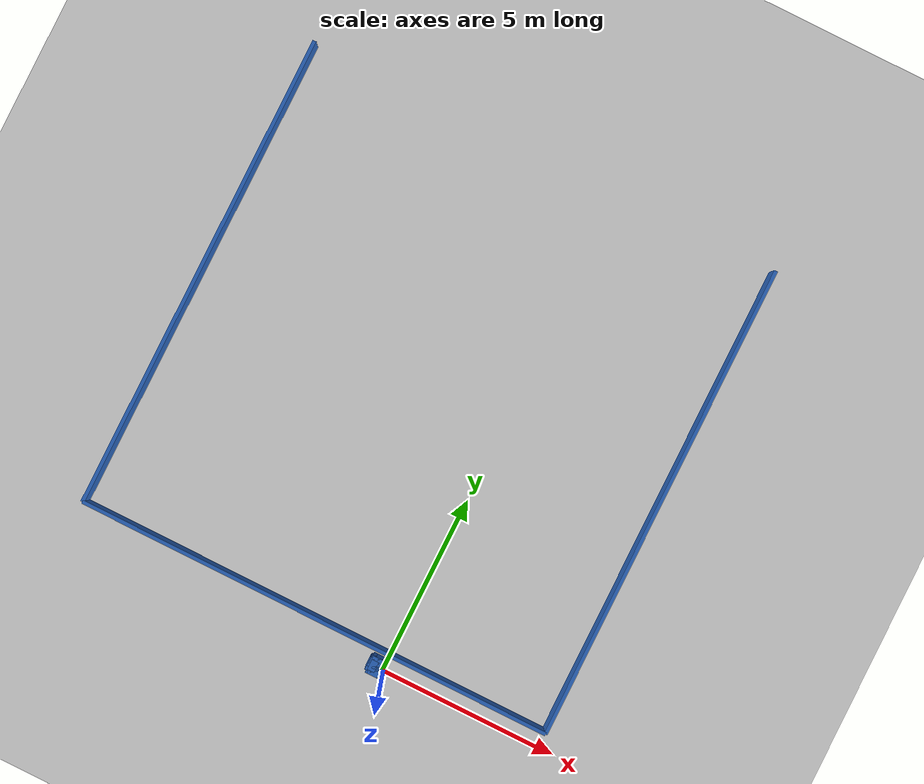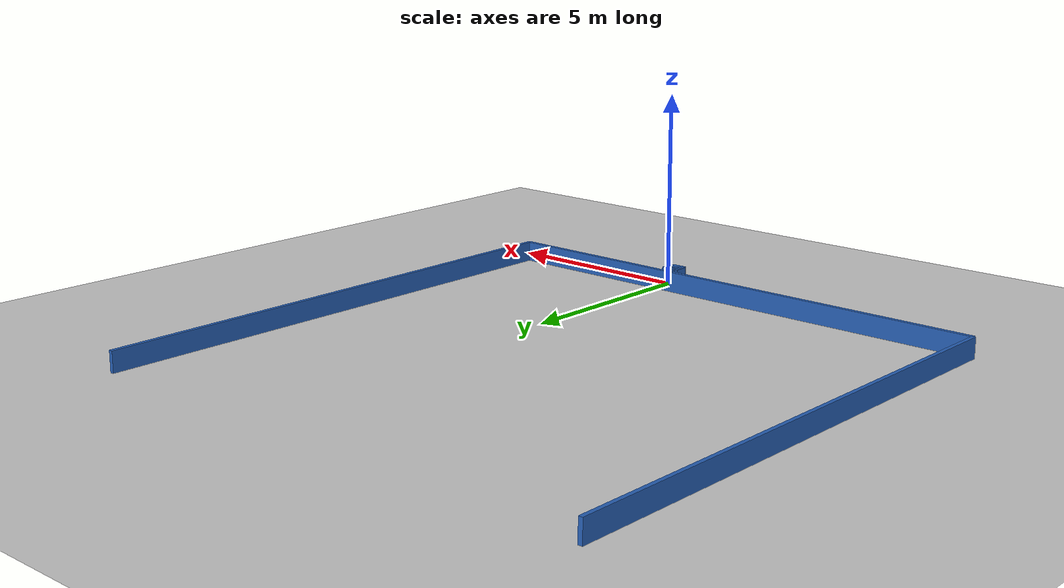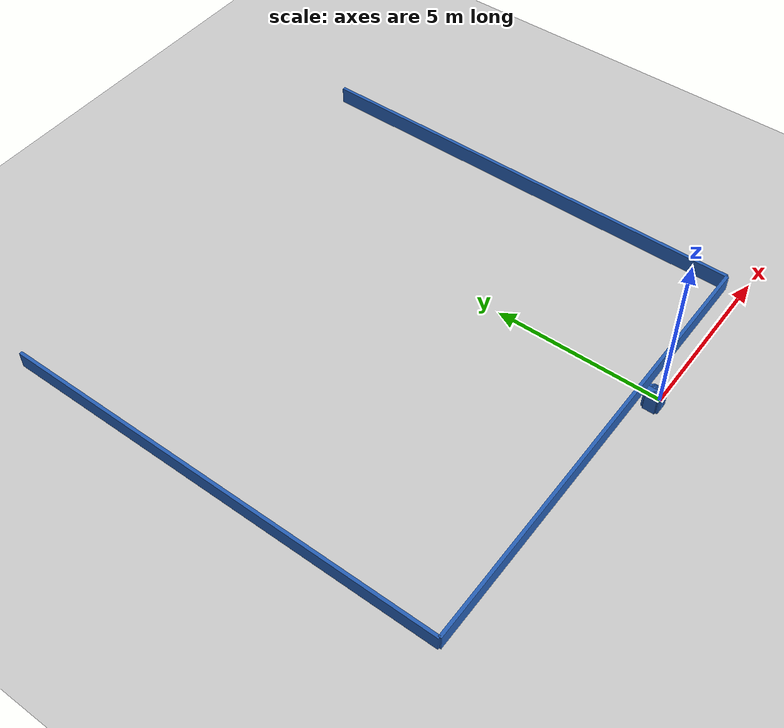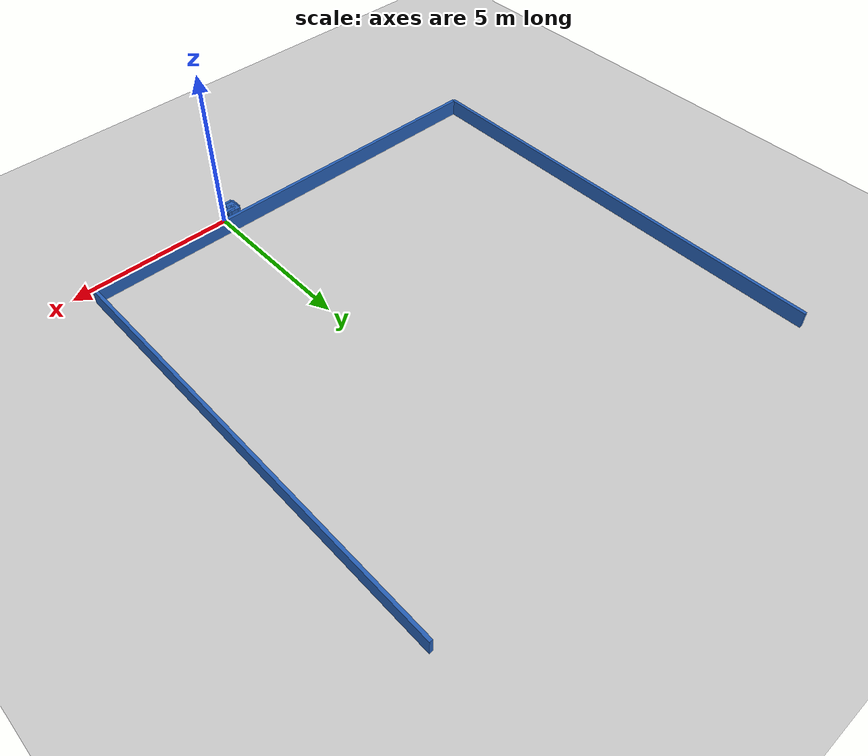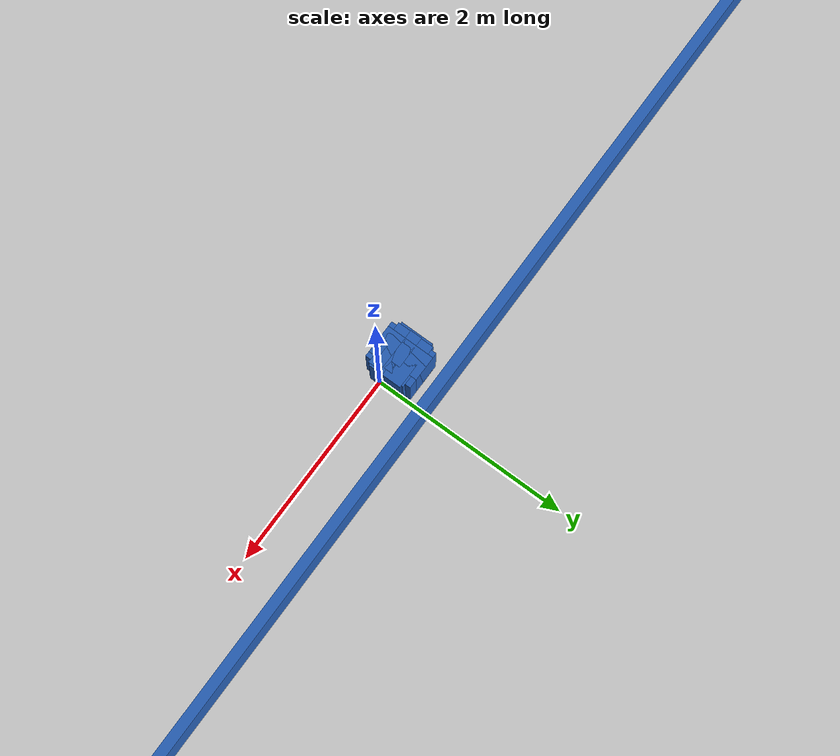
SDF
<?xml version="1.0" ?>
    <sdf version="1.5">
      <world name="default">
        <!-- A global light source -->
        <include>
          <uri>model://sun</uri>
        </include>
        <!-- A ground plane -->
        <include>
          <uri>model://ground_plane</uri>
        </include>

    <model name='libopen_space_final_T2B_115_16'>
      <static>1</static>
      <pose frame=''>-0.225000 0.075000 0.000000 0.000000 0.000000 0.000000</pose>
      <link name='link'>
        <inertial>
          <mass>1</mass>
          <inertia>
            <ixx>0.145833</ixx>
            <ixy>0</ixy>
            <ixz>0</ixz>
            <iyy>0.145833</iyy>
            <iyz>0</iyz>
            <izz>0.125</izz>
          </inertia>
        </inertial>
        <collision name='collision'>
          <geometry>
            <box>
              <size>0.11 0.14 1</size>
            </box>
          </geometry>
          <max_contacts>10</max_contacts>
          <surface>
            <contact>
              <ode/>
            </contact>
            <bounce/>
            <friction>
              <torsional>
                <ode/>
              </torsional>
              <ode/>
            </friction>
          </surface>
        </collision>
        <visual name='visual'>
          <geometry>
            <box>
              <size>0.11 0.14 1</size>
            </box>
          </geometry>
	    <material>
              <ambient>0.152000 0.379000 0.720000 1</ambient>
	      <diffuse>0.152000 0.379000 0.720000 1</diffuse>
          </material>
          <material>
            <script>
              <name>Gazebo/Grey</name>
              <uri>file://media/materials/scripts/gazebo.material</uri>
            </script>
          </material>
        </visual>
        <self_collide>0</self_collide>
        <kinematic>0</kinematic>
        <gravity>1</gravity>
      </link>
      <plugin name='libopen_space_final_T2B_115_16' filename='libopen_space_final_T2B_115_16.so'/>
    </model>

    <model name='libopen_space_final_T2B_56_75'>
      <static>1</static>
      <pose frame=''>-0.225000 0.075000 0.000000 0.000000 0.000000 0.000000</pose>
      <link name='link'>
        <inertial>
          <mass>1</mass>
          <inertia>
            <ixx>0.145833</ixx>
            <ixy>0</ixy>
            <ixz>0</ixz>
            <iyy>0.145833</iyy>
            <iyz>0</iyz>
            <izz>0.125</izz>
          </inertia>
        </inertial>
        <collision name='collision'>
          <geometry>
            <box>
              <size>0.21 0.49 1</size>
            </box>
          </geometry>
          <max_contacts>10</max_contacts>
          <surface>
            <contact>
              <ode/>
            </contact>
            <bounce/>
            <friction>
              <torsional>
                <ode/>
              </torsional>
              <ode/>
            </friction>
          </surface>
        </collision>
        <visual name='visual'>
          <geometry>
            <box>
              <size>0.21 0.49 1</size>
            </box>
          </geometry>
	    <material>
              <ambient>0.152000 0.379000 0.720000 1</ambient>
	      <diffuse>0.152000 0.379000 0.720000 1</diffuse>
          </material>
          <material>
            <script>
              <name>Gazebo/Grey</name>
              <uri>file://media/materials/scripts/gazebo.material</uri>
            </script>
          </material>
        </visual>
        <self_collide>0</self_collide>
        <kinematic>0</kinematic>
        <gravity>1</gravity>
      </link>
      <plugin name='libopen_space_final_T2B_56_75' filename='libopen_space_final_T2B_56_75.so'/>
    </model>

    <model name='libopen_space_final_T2B_127_53'>
      <static>1</static>
      <pose frame=''>-0.225000 0.075000 0.000000 0.000000 0.000000 0.000000</pose>
      <link name='link'>
        <inertial>
          <mass>1</mass>
          <inertia>
            <ixx>0.145833</ixx>
            <ixy>0</ixy>
            <ixz>0</ixz>
            <iyy>0.145833</iyy>
            <iyz>0</iyz>
            <izz>0.125</izz>
          </inertia>
        </inertial>
        <collision name='collision'>
          <geometry>
            <box>
              <size>0.39 0.49 1</size>
            </box>
          </geometry>
          <max_contacts>10</max_contacts>
          <surface>
            <contact>
              <ode/>
            </contact>
            <bounce/>
            <friction>
              <torsional>
                <ode/>
              </torsional>
              <ode/>
            </friction>
          </surface>
        </collision>
        <visual name='visual'>
          <geometry>
            <box>
              <size>0.39 0.49 1</size>
            </box>
          </geometry>
	    <material>
              <ambient>0.152000 0.379000 0.720000 1</ambient>
	      <diffuse>0.152000 0.379000 0.720000 1</diffuse>
          </material>
          <material>
            <script>
              <name>Gazebo/Grey</name>
              <uri>file://media/materials/scripts/gazebo.material</uri>
            </script>
          </material>
        </visual>
        <self_collide>0</self_collide>
        <kinematic>0</kinematic>
        <gravity>1</gravity>
      </link>
      <plugin name='libopen_space_final_T2B_127_53' filename='libopen_space_final_T2B_127_53.so'/>
    </model>

    <model name='libopen_space_final_T2B_122_30'>
      <static>1</static>
      <pose frame=''>-0.225000 0.075000 0.000000 0.000000 0.000000 0.000000</pose>
      <link name='link'>
        <inertial>
          <mass>1</mass>
          <inertia>
            <ixx>0.145833</ixx>
            <ixy>0</ixy>
            <ixz>0</ixz>
            <iyy>0.145833</iyy>
            <iyz>0</iyz>
            <izz>0.125</izz>
          </inertia>
        </inertial>
        <collision name='collision'>
          <geometry>
            <box>
              <size>0.20 0.12 1</size>
            </box>
          </geometry>
          <max_contacts>10</max_contacts>
          <surface>
            <contact>
              <ode/>
            </contact>
            <bounce/>
            <friction>
              <torsional>
                <ode/>
              </torsional>
              <ode/>
            </friction>
          </surface>
        </collision>
        <visual name='visual'>
          <geometry>
            <box>
              <size>0.20 0.12 1</size>
            </box>
          </geometry>
	    <material>
              <ambient>0.152000 0.379000 0.720000 1</ambient>
	      <diffuse>0.152000 0.379000 0.720000 1</diffuse>
          </material>
          <material>
            <script>
              <name>Gazebo/Grey</name>
              <uri>file://media/materials/scripts/gazebo.material</uri>
            </script>
          </material>
        </visual>
        <self_collide>0</self_collide>
        <kinematic>0</kinematic>
        <gravity>1</gravity>
      </link>
      <plugin name='libopen_space_final_T2B_122_30' filename='libopen_space_final_T2B_122_30.so'/>
    </model>

    <model name='libopen_space_final_T2B_83_17'>
      <static>1</static>
      <pose frame=''>-0.225000 0.075000 0.000000 0.000000 0.000000 0.000000</pose>
      <link name='link'>
        <inertial>
          <mass>1</mass>
          <inertia>
            <ixx>0.145833</ixx>
            <ixy>0</ixy>
            <ixz>0</ixz>
            <iyy>0.145833</iyy>
            <iyz>0</iyz>
            <izz>0.125</izz>
          </inertia>
        </inertial>
        <collision name='collision'>
          <geometry>
            <box>
              <size>0.29 0.49 1</size>
            </box>
          </geometry>
          <max_contacts>10</max_contacts>
          <surface>
            <contact>
              <ode/>
            </contact>
            <bounce/>
            <friction>
              <torsional>
                <ode/>
              </torsional>
              <ode/>
            </friction>
          </surface>
        </collision>
        <visual name='visual'>
          <geometry>
            <box>
              <size>0.29 0.49 1</size>
            </box>
          </geometry>
	    <material>
              <ambient>0.152000 0.379000 0.720000 1</ambient>
	      <diffuse>0.152000 0.379000 0.720000 1</diffuse>
          </material>
          <material>
            <script>
              <name>Gazebo/Grey</name>
              <uri>file://media/materials/scripts/gazebo.material</uri>
            </script>
          </material>
        </visual>
        <self_collide>0</self_collide>
        <kinematic>0</kinematic>
        <gravity>1</gravity>
      </link>
      <plugin name='libopen_space_final_T2B_83_17' filename='libopen_space_final_T2B_83_17.so'/>
    </model>

    <model name='libopen_space_final_T2B_83_23'>
      <static>1</static>
      <pose frame=''>-0.225000 0.075000 0.000000 0.000000 0.000000 0.000000</pose>
      <link name='link'>
        <inertial>
          <mass>1</mass>
          <inertia>
            <ixx>0.145833</ixx>
            <ixy>0</ixy>
            <ixz>0</ixz>
            <iyy>0.145833</iyy>
            <iyz>0</iyz>
            <izz>0.125</izz>
          </inertia>
        </inertial>
        <collision name='collision'>
          <geometry>
            <box>
              <size>0.37 0.29 1</size>
            </box>
          </geometry>
          <max_contacts>10</max_contacts>
          <surface>
            <contact>
              <ode/>
            </contact>
            <bounce/>
            <friction>
              <torsional>
                <ode/>
              </torsional>
              <ode/>
            </friction>
          </surface>
        </collision>
        <visual name='visual'>
          <geometry>
            <box>
              <size>0.37 0.29 1</size>
            </box>
          </geometry>
	    <material>
              <ambient>0.152000 0.379000 0.720000 1</ambient>
	      <diffuse>0.152000 0.379000 0.720000 1</diffuse>
          </material>
          <material>
            <script>
              <name>Gazebo/Grey</name>
              <uri>file://media/materials/scripts/gazebo.material</uri>
            </script>
          </material>
        </visual>
        <self_collide>0</self_collide>
        <kinematic>0</kinematic>
        <gravity>1</gravity>
      </link>
      <plugin name='libopen_space_final_T2B_83_23' filename='libopen_space_final_T2B_83_23.so'/>
    </model>

    <model name='libopen_space_final_T2B_92_34'>
      <static>1</static>
      <pose frame=''>-0.225000 0.075000 0.000000 0.000000 0.000000 0.000000</pose>
      <link name='link'>
        <inertial>
          <mass>1</mass>
          <inertia>
            <ixx>0.145833</ixx>
            <ixy>0</ixy>
            <ixz>0</ixz>
            <iyy>0.145833</iyy>
            <iyz>0</iyz>
            <izz>0.125</izz>
          </inertia>
        </inertial>
        <collision name='collision'>
          <geometry>
            <box>
              <size>0.45 0.38 1</size>
            </box>
          </geometry>
          <max_contacts>10</max_contacts>
          <surface>
            <contact>
              <ode/>
            </contact>
            <bounce/>
            <friction>
              <torsional>
                <ode/>
              </torsional>
              <ode/>
            </friction>
          </surface>
        </collision>
        <visual name='visual'>
          <geometry>
            <box>
              <size>0.45 0.38 1</size>
            </box>
          </geometry>
	    <material>
              <ambient>0.152000 0.379000 0.720000 1</ambient>
	      <diffuse>0.152000 0.379000 0.720000 1</diffuse>
          </material>
          <material>
            <script>
              <name>Gazebo/Grey</name>
              <uri>file://media/materials/scripts/gazebo.material</uri>
            </script>
          </material>
        </visual>
        <self_collide>0</self_collide>
        <kinematic>0</kinematic>
        <gravity>1</gravity>
      </link>
      <plugin name='libopen_space_final_T2B_92_34' filename='libopen_space_final_T2B_92_34.so'/>
    </model>

    <model name='libopen_space_final_T2B_112_28'>
      <static>1</static>
      <pose frame=''>-0.225000 0.075000 0.000000 0.000000 0.000000 0.000000</pose>
      <link name='link'>
        <inertial>
          <mass>1</mass>
          <inertia>
            <ixx>0.145833</ixx>
            <ixy>0</ixy>
            <ixz>0</ixz>
            <iyy>0.145833</iyy>
            <iyz>0</iyz>
            <izz>0.125</izz>
          </inertia>
        </inertial>
        <collision name='collision'>
          <geometry>
            <box>
              <size>0.33 0.12 1</size>
            </box>
          </geometry>
          <max_contacts>10</max_contacts>
          <surface>
            <contact>
              <ode/>
            </contact>
            <bounce/>
            <friction>
              <torsional>
                <ode/>
              </torsional>
              <ode/>
            </friction>
          </surface>
        </collision>
        <visual name='visual'>
          <geometry>
            <box>
              <size>0.33 0.12 1</size>
            </box>
          </geometry>
	    <material>
              <ambient>0.152000 0.379000 0.720000 1</ambient>
	      <diffuse>0.152000 0.379000 0.720000 1</diffuse>
          </material>
          <material>
            <script>
              <name>Gazebo/Grey</name>
              <uri>file://media/materials/scripts/gazebo.material</uri>
            </script>
          </material>
        </visual>
        <self_collide>0</self_collide>
        <kinematic>0</kinematic>
        <gravity>1</gravity>
      </link>
      <plugin name='libopen_space_final_T2B_112_28' filename='libopen_space_final_T2B_112_28.so'/>
    </model>

    <model name='libopen_space_final_T2B_73_55'>
      <static>1</static>
      <pose frame=''>-0.225000 0.075000 0.000000 0.000000 0.000000 0.000000</pose>
      <link name='link'>
        <inertial>
          <mass>1</mass>
          <inertia>
            <ixx>0.145833</ixx>
            <ixy>0</ixy>
            <ixz>0</ixz>
            <iyy>0.145833</iyy>
            <iyz>0</iyz>
            <izz>0.125</izz>
          </inertia>
        </inertial>
        <collision name='collision'>
          <geometry>
            <box>
              <size>0.46 0.12 1</size>
            </box>
          </geometry>
          <max_contacts>10</max_contacts>
          <surface>
            <contact>
              <ode/>
            </contact>
            <bounce/>
            <friction>
              <torsional>
                <ode/>
              </torsional>
              <ode/>
            </friction>
          </surface>
        </collision>
        <visual name='visual'>
          <geometry>
            <box>
              <size>0.46 0.12 1</size>
            </box>
          </geometry>
	    <material>
              <ambient>0.152000 0.379000 0.720000 1</ambient>
	      <diffuse>0.152000 0.379000 0.720000 1</diffuse>
          </material>
          <material>
            <script>
              <name>Gazebo/Grey</name>
              <uri>file://media/materials/scripts/gazebo.material</uri>
            </script>
          </material>
        </visual>
        <self_collide>0</self_collide>
        <kinematic>0</kinematic>
        <gravity>1</gravity>
      </link>
      <plugin name='libopen_space_final_T2B_73_55' filename='libopen_space_final_T2B_73_55.so'/>
    </model>

    <model name='libopen_space_final_T2B_99_64'>
      <static>1</static>
      <pose frame=''>-0.225000 0.075000 0.000000 0.000000 0.000000 0.000000</pose>
      <link name='link'>
        <inertial>
          <mass>1</mass>
          <inertia>
            <ixx>0.145833</ixx>
            <ixy>0</ixy>
            <ixz>0</ixz>
            <iyy>0.145833</iyy>
            <iyz>0</iyz>
            <izz>0.125</izz>
          </inertia>
        </inertial>
        <collision name='collision'>
          <geometry>
            <box>
              <size>0.12 0.12 1</size>
            </box>
          </geometry>
          <max_contacts>10</max_contacts>
          <surface>
            <contact>
              <ode/>
            </contact>
            <bounce/>
            <friction>
              <torsional>
                <ode/>
              </torsional>
              <ode/>
            </friction>
          </surface>
        </collision>
        <visual name='visual'>
          <geometry>
            <box>
              <size>0.12 0.12 1</size>
            </box>
          </geometry>
	    <material>
              <ambient>0.152000 0.379000 0.720000 1</ambient>
	      <diffuse>0.152000 0.379000 0.720000 1</diffuse>
          </material>
          <material>
            <script>
              <name>Gazebo/Grey</name>
              <uri>file://media/materials/scripts/gazebo.material</uri>
            </script>
          </material>
        </visual>
        <self_collide>0</self_collide>
        <kinematic>0</kinematic>
        <gravity>1</gravity>
      </link>
      <plugin name='libopen_space_final_T2B_99_64' filename='libopen_space_final_T2B_99_64.so'/>
    </model>

    <model name='libopen_space_final_T2B_103_35'>
      <static>1</static>
      <pose frame=''>-0.225000 0.075000 0.000000 0.000000 0.000000 0.000000</pose>
      <link name='link'>
        <inertial>
          <mass>1</mass>
          <inertia>
            <ixx>0.145833</ixx>
            <ixy>0</ixy>
            <ixz>0</ixz>
            <iyy>0.145833</iyy>
            <iyz>0</iyz>
            <izz>0.125</izz>
          </inertia>
        </inertial>
        <collision name='collision'>
          <geometry>
            <box>
              <size>0.49 0.34 1</size>
            </box>
          </geometry>
          <max_contacts>10</max_contacts>
          <surface>
            <contact>
              <ode/>
            </contact>
            <bounce/>
            <friction>
              <torsional>
                <ode/>
              </torsional>
              <ode/>
            </friction>
          </surface>
        </collision>
        <visual name='visual'>
          <geometry>
            <box>
              <size>0.49 0.34 1</size>
            </box>
          </geometry>
	    <material>
              <ambient>0.152000 0.379000 0.720000 1</ambient>
	      <diffuse>0.152000 0.379000 0.720000 1</diffuse>
          </material>
          <material>
            <script>
              <name>Gazebo/Grey</name>
              <uri>file://media/materials/scripts/gazebo.material</uri>
            </script>
          </material>
        </visual>
        <self_collide>0</self_collide>
        <kinematic>0</kinematic>
        <gravity>1</gravity>
      </link>
      <plugin name='libopen_space_final_T2B_103_35' filename='libopen_space_final_T2B_103_35.so'/>
    </model>

        <model name='bottom_wall'>
          <static>1</static>
          <pose frame=''>-2.25 0.5 0.000000 0.000000 0.000000 1.57079632</pose>
          <link name='link'>
            <inertial>
            <mass>1</mass>
            <inertia>
              <ixx>0.145833</ixx>
              <ixy>0</ixy>
              <ixz>0</ixz>
              <iyy>0.145833</iyy>
              <iyz>0</iyz>
              <izz>0.125</izz>
            </inertia>
            </inertial>
            <collision name='collision'>
            <geometry>
              <box>
              <size>0.1 13.5 1</size>
              </box>
            </geometry>
            <max_contacts>10</max_contacts>
            <surface>
              <contact>
              <ode/>
              </contact>
              <bounce/>
              <friction>
              <torsional>
                <ode/>
              </torsional>
              <ode/>
              </friction>
            </surface>
            </collision>
            <visual name='visual'>
            <geometry>
              <box>
              <size>0.1 13.5 1</size>
              </box>
            </geometry>
            <material>
              <ambient>0.152000 0.379000 0.720000 1</ambient>
            <diffuse>0.152000 0.379000 0.720000 1</diffuse>
            </material>
            <material>
              <script>
              <name>Gazebo/Grey</name>
              <uri>file://media/materials/scripts/gazebo.material</uri>
              </script>
            </material>
            </visual>
            <self_collide>0</self_collide>
            <kinematic>0</kinematic>
            <gravity>1</gravity>
          </link>
        </model>

        <model name='left_wall'>
          <static>1</static>
          <pose frame=''>-9 7.25 0.000000 0.000000 0.000000 0.000000</pose>
          <link name='link'>
            <inertial>
            <mass>1</mass>
            <inertia>
              <ixx>0.145833</ixx>
              <ixy>0</ixy>
              <ixz>0</ixz>
              <iyy>0.145833</iyy>
              <iyz>0</iyz>
              <izz>0.125</izz>
            </inertia>
            </inertial>
            <collision name='collision'>
            <geometry>
              <box>
              <size>0.1 13.5 1</size>
              </box>
            </geometry>
            <max_contacts>10</max_contacts>
            <surface>
              <contact>
              <ode/>
              </contact>
              <bounce/>
              <friction>
              <torsional>
                <ode/>
              </torsional>
              <ode/>
              </friction>
            </surface>
            </collision>
            <visual name='visual'>
            <geometry>
              <box>
              <size>0.1 13.5 1</size>
              </box>
            </geometry>
            <material>
              <ambient>0.152000 0.379000 0.720000 1</ambient>
            <diffuse>0.152000 0.379000 0.720000 1</diffuse>
            </material>
            <material>
              <script>
              <name>Gazebo/Grey</name>
              <uri>file://media/materials/scripts/gazebo.material</uri>
              </script>
            </material>
            </visual>
            <self_collide>0</self_collide>
            <kinematic>0</kinematic>
            <gravity>1</gravity>
          </link>
        </model>

        <model name='right_wall'>
          <static>1</static>
          <pose frame=''>4.5 7.25 0.000000 0.000000 0.000000 0.000000</pose>
          <link name='link'>
            <inertial>
            <mass>1</mass>
            <inertia>
              <ixx>0.145833</ixx>
              <ixy>0</ixy>
              <ixz>0</ixz>
              <iyy>0.145833</iyy>
              <iyz>0</iyz>
              <izz>0.125</izz>
            </inertia>
            </inertial>
            <collision name='collision'>
            <geometry>
              <box>
              <size>0.1 13.5 1</size>
              </box>
            </geometry>
            <max_contacts>10</max_contacts>
            <surface>
              <contact>
              <ode/>
              </contact>
              <bounce/>
              <friction>
              <torsional>
                <ode/>
              </torsional>
              <ode/>
              </friction>
            </surface>
            </collision>
            <visual name='visual'>
            <geometry>
              <box>
              <size>0.1 13.5 1</size>
              </box>
            </geometry>
            <material>
              <ambient>0.152000 0.379000 0.720000 1</ambient>
            <diffuse>0.152000 0.379000 0.720000 1</diffuse>
            </material>
            <material>
              <script>
              <name>Gazebo/Grey</name>
              <uri>file://media/materials/scripts/gazebo.material</uri>
              </script>
            </material>
            </visual>
            <self_collide>0</self_collide>
            <kinematic>0</kinematic>
            <gravity>1</gravity>
          </link>
        </model>

      </world>
    </sdf>"
